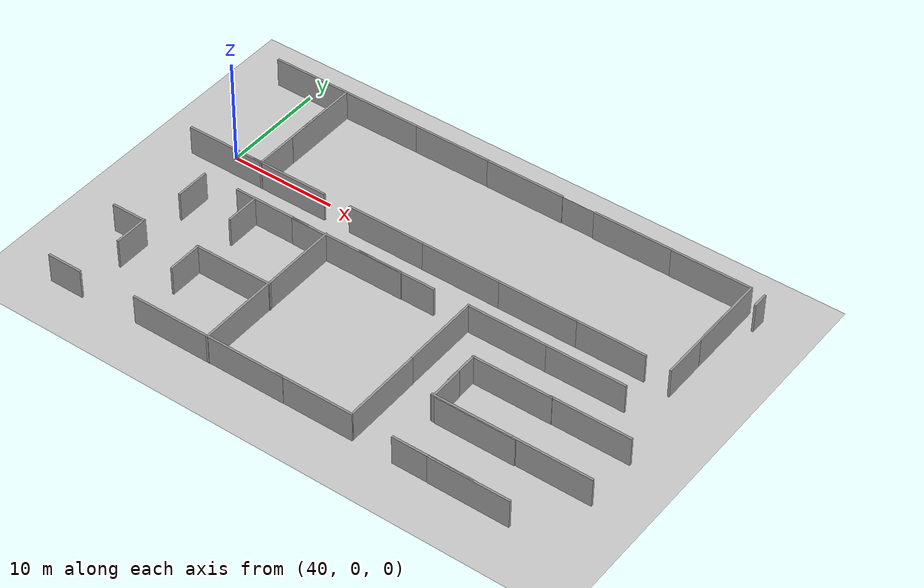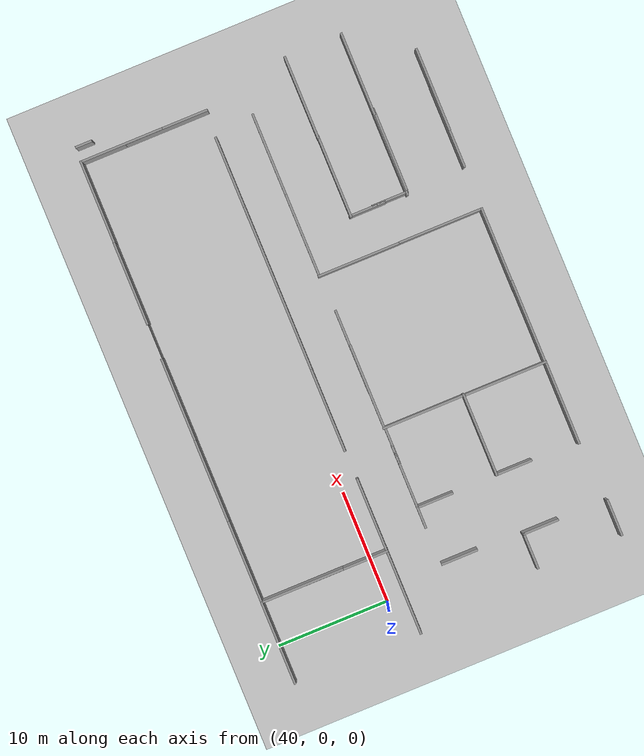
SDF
<sdf version="1.7">
 <world name="default">
  <model name="ground_plane">
   <static>1</static>
   <link name="link">
    <collision name="collision">
     <geometry><plane><normal>0 0 1</normal><size>100 100</size></plane></geometry>
     <surface>
      <contact><collide_bitmask>65535</collide_bitmask></contact>
      <friction><ode><mu>100</mu><mu2>50</mu2></ode></friction>
     </surface>
    </collision>
    <visual name="visual">
     <cast_shadows>0</cast_shadows>
     <geometry><plane><normal>0 0 1</normal><size>100 100</size></plane></geometry>
     <material>
      <script><uri>file://media/materials/scripts/gazebo.material</uri><name>Gazebo/Grey</name></script>
     </material>
    </visual>
   </link>
  </model>
  <model name="grey_wall_clone_1_clone_2_clone_clone_clone">
   <static>1</static>
   <link name="link">
    <pose>0 0 1.4 0 -0 0</pose>
    <collision name="collision"><geometry><box><size>7.5 0.2 2.8</size></box></geometry></collision>
    <visual name="visual">
     <cast_shadows>0</cast_shadows>
     <geometry><box><size>7.5 0.2 2.8</size></box></geometry>
     <material>
      <script>
       <uri>model://grey_wall/materials/scripts</uri>
       <uri>model://grey_wall/materials/textures</uri>
       <name>vrc/grey_wall</name>
      </script>
     </material>
    </visual>
   </link>
   <pose>40.4619 9.80574 0 0 -0 0</pose>
  </model>
  <model name="grey_wall_clone_2_clone_clone_clone_1_clone_clone_0_clone_0">
   <static>1</static>
   <link name="link">
    <pose>0 0 1.4 0 -0 0</pose>
    <collision name="collision"><geometry><box><size>7.5 0.2 2.8</size></box></geometry></collision>
    <visual name="visual">
     <cast_shadows>0</cast_shadows>
     <geometry><box><size>7.5 0.2 2.8</size></box></geometry>
     <material>
      <script>
       <uri>model://grey_wall/materials/scripts</uri>
       <uri>model://grey_wall/materials/textures</uri>
       <name>vrc/grey_wall</name>
      </script>
     </material>
    </visual>
   </link>
   <pose>44.1466 6.12101 0 0 0 -1.5708</pose>
  </model>
  <model name="grey_wall_clone_2_clone_clone_clone_1_clone_clone_0_clone_1">
   <static>1</static>
   <link name="link">
    <pose>0 0 1.4 0 -0 0</pose>
    <collision name="collision"><geometry><box><size>7.5 0.2 2.8</size></box></geometry></collision>
    <visual name="visual">
     <cast_shadows>0</cast_shadows>
     <geometry><box><size>7.5 0.2 2.8</size></box></geometry>
     <material>
      <script>
       <uri>model://grey_wall/materials/scripts</uri>
       <uri>model://grey_wall/materials/textures</uri>
       <name>vrc/grey_wall</name>
      </script>
     </material>
    </visual>
   </link>
   <pose>44.1365 2.03383 0 0 0 -1.5708</pose>
  </model>
  <model name="grey_wall_clone_1_clone_2_clone_clone_clone_clone">
   <static>1</static>
   <link name="link">
    <pose>0 0 1.4 0 -0 0</pose>
    <collision name="collision"><geometry><box><size>7.5 0.2 2.8</size></box></geometry></collision>
    <visual name="visual">
     <cast_shadows>0</cast_shadows>
     <geometry><box><size>7.5 0.2 2.8</size></box></geometry>
     <material>
      <script>
       <uri>model://grey_wall/materials/scripts</uri>
       <uri>model://grey_wall/materials/textures</uri>
       <name>vrc/grey_wall</name>
      </script>
     </material>
    </visual>
   </link>
   <pose>40.3269 -1.60341 0 0 -0 0</pose>
  </model>
  <model name="fixed_half_clone_15">
   <link name="link">
    <pose>0 0 1.4 0 -0 0</pose>
    <inertial>
     <mass>1</mass>
     <inertia><ixx>1</ixx><ixy>0</ixy><ixz>0</ixz><iyy>1</iyy><iyz>0</iyz><izz>1</izz></inertia>
    </inertial>
    <visual name="visual">
     <cast_shadows>0</cast_shadows>
     <geometry><box><size>3.3 0.2 2.8</size></box></geometry>
     <material>
      <script>
       <uri>model://grey_wall/materials/scripts</uri>
       <uri>model://grey_wall/materials/textures</uri>
       <name>vrc/grey_wall</name>
      </script>
      <shader type="pixel"><normal_map>__default__</normal_map></shader>
      <ambient>1 1 1 1</ambient>
      <diffuse>1 1 1 1</diffuse>
      <specular>0 0 0 1</specular>
      <emissive>0 0 0 1</emissive>
     </material>
    </visual>
    <collision name="collision">
     <geometry><box><size>3.3 0.2 2.8</size></box></geometry>
     <surface>
      <friction>
       <ode><mu>1</mu><mu2>1</mu2><fdir1>0 0 0</fdir1><slip1>0</slip1><slip2>0</slip2></ode>
       <torsional>
        <coefficient>1</coefficient>
        <patch_radius>0</patch_radius>
        <surface_radius>0</surface_radius>
        <use_patch_radius>1</use_patch_radius>
        <ode><slip>0</slip></ode>
       </torsional>
      </friction>
      <bounce><restitution_coefficient>0</restitution_coefficient><threshold>1e+06</threshold></bounce>
      <contact>
       <collide_without_contact>0</collide_without_contact>
       <collide_without_contact_bitmask>1</collide_without_contact_bitmask>
       <collide_bitmask>1</collide_bitmask>
       <ode>
        <soft_cfm>0</soft_cfm>
        <soft_erp>0.2</soft_erp>
        <kp>1e+13</kp>
        <kd>1</kd>
        <max_vel>0.01</max_vel>
        <min_depth>0</min_depth>
       </ode>
       <bullet>
        <split_impulse>1</split_impulse>
        <split_impulse_penetration_threshold>-0.01</split_impulse_penetration_threshold>
        <soft_cfm>0</soft_cfm>
        <soft_erp>0.2</soft_erp>
        <kp>1e+13</kp>
        <kd>1</kd>
       </bullet>
      </contact>
     </surface>
    </collision>
   </link>
   <static>1</static>
   <pose>41.0919 -14.3442 0 0 0 -1.5708</pose>
  </model>
  <model name="fixed_half_clone_16">
   <link name="link">
    <pose>0 0 1.4 0 -0 0</pose>
    <inertial>
     <mass>1</mass>
     <inertia><ixx>1</ixx><ixy>0</ixy><ixz>0</ixz><iyy>1</iyy><iyz>0</iyz><izz>1</izz></inertia>
    </inertial>
    <visual name="visual">
     <cast_shadows>0</cast_shadows>
     <geometry><box><size>3.3 0.2 2.8</size></box></geometry>
     <material>
      <script>
       <uri>model://grey_wall/materials/scripts</uri>
       <uri>model://grey_wall/materials/textures</uri>
       <name>vrc/grey_wall</name>
      </script>
      <shader type="pixel"><normal_map>__default__</normal_map></shader>
      <ambient>1 1 1 1</ambient>
      <diffuse>1 1 1 1</diffuse>
      <specular>0 0 0 1</specular>
      <emissive>0 0 0 1</emissive>
     </material>
    </visual>
    <collision name="collision">
     <geometry><box><size>3.3 0.2 2.8</size></box></geometry>
     <surface>
      <friction>
       <ode><mu>1</mu><mu2>1</mu2><fdir1>0 0 0</fdir1><slip1>0</slip1><slip2>0</slip2></ode>
       <torsional>
        <coefficient>1</coefficient>
        <patch_radius>0</patch_radius>
        <surface_radius>0</surface_radius>
        <use_patch_radius>1</use_patch_radius>
        <ode><slip>0</slip></ode>
       </torsional>
      </friction>
      <bounce><restitution_coefficient>0</restitution_coefficient><threshold>1e+06</threshold></bounce>
      <contact>
       <collide_without_contact>0</collide_without_contact>
       <collide_without_contact_bitmask>1</collide_without_contact_bitmask>
       <collide_bitmask>1</collide_bitmask>
       <ode>
        <soft_cfm>0</soft_cfm>
        <soft_erp>0.2</soft_erp>
        <kp>1e+13</kp>
        <kd>1</kd>
        <max_vel>0.01</max_vel>
        <min_depth>0</min_depth>
       </ode>
       <bullet>
        <split_impulse>1</split_impulse>
        <split_impulse_penetration_threshold>-0.01</split_impulse_penetration_threshold>
        <soft_cfm>0</soft_cfm>
        <soft_erp>0.2</soft_erp>
        <kp>1e+13</kp>
        <kd>1</kd>
       </bullet>
      </contact>
     </surface>
    </collision>
   </link>
   <static>1</static>
   <pose>41.3402 -7.06915 0 0 0 -1.5708</pose>
  </model>
  <model name="fixed_half_clone_17_clone_6">
   <link name="link">
    <pose>0 0 1.4 0 -0 0</pose>
    <inertial>
     <mass>1</mass>
     <inertia><ixx>1</ixx><ixy>0</ixy><ixz>0</ixz><iyy>1</iyy><iyz>0</iyz><izz>1</izz></inertia>
    </inertial>
    <visual name="visual">
     <cast_shadows>0</cast_shadows>
     <geometry><box><size>3.3 0.2 2.8</size></box></geometry>
     <material>
      <script>
       <uri>model://grey_wall/materials/scripts</uri>
       <uri>model://grey_wall/materials/textures</uri>
       <name>vrc/grey_wall</name>
      </script>
      <shader type="pixel"><normal_map>__default__</normal_map></shader>
      <ambient>1 1 1 1</ambient>
      <diffuse>1 1 1 1</diffuse>
      <specular>0 0 0 1</specular>
      <emissive>0 0 0 1</emissive>
     </material>
    </visual>
    <collision name="collision">
     <geometry><box><size>3.3 0.2 2.8</size></box></geometry>
     <surface>
      <friction>
       <ode><mu>1</mu><mu2>1</mu2><fdir1>0 0 0</fdir1><slip1>0</slip1><slip2>0</slip2></ode>
       <torsional>
        <coefficient>1</coefficient>
        <patch_radius>0</patch_radius>
        <surface_radius>0</surface_radius>
        <use_patch_radius>1</use_patch_radius>
        <ode><slip>0</slip></ode>
       </torsional>
      </friction>
      <bounce><restitution_coefficient>0</restitution_coefficient><threshold>1e+06</threshold></bounce>
      <contact>
       <collide_without_contact>0</collide_without_contact>
       <collide_without_contact_bitmask>1</collide_without_contact_bitmask>
       <collide_bitmask>1</collide_bitmask>
       <ode>
        <soft_cfm>0</soft_cfm>
        <soft_erp>0.2</soft_erp>
        <kp>1e+13</kp>
        <kd>1</kd>
        <max_vel>0.01</max_vel>
        <min_depth>0</min_depth>
       </ode>
       <bullet>
        <split_impulse>1</split_impulse>
        <split_impulse_penetration_threshold>-0.01</split_impulse_penetration_threshold>
        <soft_cfm>0</soft_cfm>
        <soft_erp>0.2</soft_erp>
        <kp>1e+13</kp>
        <kd>1</kd>
       </bullet>
      </contact>
     </surface>
    </collision>
   </link>
   <static>1</static>
   <pose>39.4378 -20.4114 0 0 -0 3.14159</pose>
  </model>
  <model name="fixed_half_clone_17_clone_8">
   <link name="link">
    <pose>0 0 1.4 0 -0 0</pose>
    <inertial>
     <mass>1</mass>
     <inertia><ixx>1</ixx><ixy>0</ixy><ixz>0</ixz><iyy>1</iyy><iyz>0</iyz><izz>1</izz></inertia>
    </inertial>
    <visual name="visual">
     <cast_shadows>0</cast_shadows>
     <geometry><box><size>3.3 0.2 2.8</size></box></geometry>
     <material>
      <script>
       <uri>model://grey_wall/materials/scripts</uri>
       <uri>model://grey_wall/materials/textures</uri>
       <name>vrc/grey_wall</name>
      </script>
      <shader type="pixel"><normal_map>__default__</normal_map></shader>
      <ambient>1 1 1 1</ambient>
      <diffuse>1 1 1 1</diffuse>
      <specular>0 0 0 1</specular>
      <emissive>0 0 0 1</emissive>
     </material>
    </visual>
    <collision name="collision">
     <geometry><box><size>3.3 0.2 2.8</size></box></geometry>
     <surface>
      <friction>
       <ode><mu>1</mu><mu2>1</mu2><fdir1>0 0 0</fdir1><slip1>0</slip1><slip2>0</slip2></ode>
       <torsional>
        <coefficient>1</coefficient>
        <patch_radius>0</patch_radius>
        <surface_radius>0</surface_radius>
        <use_patch_radius>1</use_patch_radius>
        <ode><slip>0</slip></ode>
       </torsional>
      </friction>
      <bounce><restitution_coefficient>0</restitution_coefficient><threshold>1e+06</threshold></bounce>
      <contact>
       <collide_without_contact>0</collide_without_contact>
       <collide_without_contact_bitmask>1</collide_without_contact_bitmask>
       <collide_bitmask>1</collide_bitmask>
       <ode>
        <soft_cfm>0</soft_cfm>
        <soft_erp>0.2</soft_erp>
        <kp>1e+13</kp>
        <kd>1</kd>
        <max_vel>0.01</max_vel>
        <min_depth>0</min_depth>
       </ode>
       <bullet>
        <split_impulse>1</split_impulse>
        <split_impulse_penetration_threshold>-0.01</split_impulse_penetration_threshold>
        <soft_cfm>0</soft_cfm>
        <soft_erp>0.2</soft_erp>
        <kp>1e+13</kp>
        <kd>1</kd>
       </bullet>
      </contact>
     </surface>
    </collision>
   </link>
   <static>1</static>
   <pose>39.5357 -12.8234 0 0 -0 3.14159</pose>
  </model>
  <model name="grey_wall_clone_1_clone_2_clone_clone_clone_clone_clone_clone">
   <static>1</static>
   <link name="link">
    <pose>0 0 1.4 0 -0 0</pose>
    <collision name="collision"><geometry><box><size>7.5 0.2 2.8</size></box></geometry></collision>
    <visual name="visual">
     <cast_shadows>0</cast_shadows>
     <geometry><box><size>7.5 0.2 2.8</size></box></geometry>
     <material>
      <script>
       <uri>model://grey_wall/materials/scripts</uri>
       <uri>model://grey_wall/materials/textures</uri>
       <name>vrc/grey_wall</name>
      </script>
     </material>
    </visual>
   </link>
   <pose>48.4034 -5.3811 0 0 -0 0</pose>
  </model>
  <model name="fixed_half_clone_16_clone">
   <link name="link">
    <pose>0 0 1.4 0 -0 0</pose>
    <inertial>
     <mass>1</mass>
     <inertia><ixx>1</ixx><ixy>0</ixy><ixz>0</ixz><iyy>1</iyy><iyz>0</iyz><izz>1</izz></inertia>
    </inertial>
    <visual name="visual">
     <cast_shadows>0</cast_shadows>
     <geometry><box><size>3.3 0.2 2.8</size></box></geometry>
     <material>
      <script>
       <uri>model://grey_wall/materials/scripts</uri>
       <uri>model://grey_wall/materials/textures</uri>
       <name>vrc/grey_wall</name>
      </script>
      <shader type="pixel"><normal_map>__default__</normal_map></shader>
      <ambient>1 1 1 1</ambient>
      <diffuse>1 1 1 1</diffuse>
      <specular>0 0 0 1</specular>
      <emissive>0 0 0 1</emissive>
     </material>
    </visual>
    <collision name="collision">
     <geometry><box><size>3.3 0.2 2.8</size></box></geometry>
     <surface>
      <friction>
       <ode><mu>1</mu><mu2>1</mu2><fdir1>0 0 0</fdir1><slip1>0</slip1><slip2>0</slip2></ode>
       <torsional>
        <coefficient>1</coefficient>
        <patch_radius>0</patch_radius>
        <surface_radius>0</surface_radius>
        <use_patch_radius>1</use_patch_radius>
        <ode><slip>0</slip></ode>
       </torsional>
      </friction>
      <bounce><restitution_coefficient>0</restitution_coefficient><threshold>1e+06</threshold></bounce>
      <contact>
       <collide_without_contact>0</collide_without_contact>
       <collide_without_contact_bitmask>1</collide_without_contact_bitmask>
       <collide_bitmask>1</collide_bitmask>
       <ode>
        <soft_cfm>0</soft_cfm>
        <soft_erp>0.2</soft_erp>
        <kp>1e+13</kp>
        <kd>1</kd>
        <max_vel>0.01</max_vel>
        <min_depth>0</min_depth>
       </ode>
       <bullet>
        <split_impulse>1</split_impulse>
        <split_impulse_penetration_threshold>-0.01</split_impulse_penetration_threshold>
        <soft_cfm>0</soft_cfm>
        <soft_erp>0.2</soft_erp>
        <kp>1e+13</kp>
        <kd>1</kd>
       </bullet>
      </contact>
     </surface>
    </collision>
   </link>
   <static>1</static>
   <pose>46.5548 -6.98911 0 0 0 -1.5708</pose>
  </model>
  <model name="grey_wall_clone_1_clone_2_clone_clone_clone_clone_clone_clone_clone">
   <static>1</static>
   <link name="link">
    <pose>0 0 1.4 0 -0 0</pose>
    <collision name="collision"><geometry><box><size>7.5 0.2 2.8</size></box></geometry></collision>
    <visual name="visual">
     <cast_shadows>0</cast_shadows>
     <geometry><box><size>7.5 0.2 2.8</size></box></geometry>
     <material>
      <script>
       <uri>model://grey_wall/materials/scripts</uri>
       <uri>model://grey_wall/materials/textures</uri>
       <name>vrc/grey_wall</name>
      </script>
     </material>
    </visual>
   </link>
   <pose>50.2071 -12.601 0 0 -0 0</pose>
  </model>
  <model name="fixed_half_clone_19_clone_1_clone_0">
   <link name="link">
    <pose>0 0 1.4 0 -0 0</pose>
    <inertial>
     <mass>1</mass>
     <inertia><ixx>1</ixx><ixy>0</ixy><ixz>0</ixz><iyy>1</iyy><iyz>0</iyz><izz>1</izz></inertia>
    </inertial>
    <visual name="visual">
     <cast_shadows>0</cast_shadows>
     <geometry><box><size>3.3 0.2 2.8</size></box></geometry>
     <material>
      <script>
       <uri>model://grey_wall/materials/scripts</uri>
       <uri>model://grey_wall/materials/textures</uri>
       <name>vrc/grey_wall</name>
      </script>
      <shader type="pixel"><normal_map>__default__</normal_map></shader>
      <ambient>1 1 1 1</ambient>
      <diffuse>1 1 1 1</diffuse>
      <specular>0 0 0 1</specular>
      <emissive>0 0 0 1</emissive>
     </material>
    </visual>
    <collision name="collision">
     <geometry><box><size>3.3 0.2 2.8</size></box></geometry>
     <surface>
      <friction>
       <ode><mu>1</mu><mu2>1</mu2><fdir1>0 0 0</fdir1><slip1>0</slip1><slip2>0</slip2></ode>
       <torsional>
        <coefficient>1</coefficient>
        <patch_radius>0</patch_radius>
        <surface_radius>0</surface_radius>
        <use_patch_radius>1</use_patch_radius>
        <ode><slip>0</slip></ode>
       </torsional>
      </friction>
      <bounce><restitution_coefficient>0</restitution_coefficient><threshold>1e+06</threshold></bounce>
      <contact>
       <collide_without_contact>0</collide_without_contact>
       <collide_without_contact_bitmask>1</collide_without_contact_bitmask>
       <collide_bitmask>1</collide_bitmask>
       <ode>
        <soft_cfm>0</soft_cfm>
        <soft_erp>0.2</soft_erp>
        <kp>1e+13</kp>
        <kd>1</kd>
        <max_vel>0.01</max_vel>
        <min_depth>0</min_depth>
       </ode>
       <bullet>
        <split_impulse>1</split_impulse>
        <split_impulse_penetration_threshold>-0.01</split_impulse_penetration_threshold>
        <soft_cfm>0</soft_cfm>
        <soft_erp>0.2</soft_erp>
        <kp>1e+13</kp>
        <kd>1</kd>
       </bullet>
      </contact>
     </surface>
    </collision>
   </link>
   <static>1</static>
   <pose>52.0981 -5.41667 0 0 -0 3.14159</pose>
  </model>
  <model name="grey_wall_clone_2_clone_clone_clone_1_clone_clone_0_clone_1_clone">
   <static>1</static>
   <link name="link">
    <pose>0 0 1.4 0 -0 0</pose>
    <collision name="collision"><geometry><box><size>7.5 0.2 2.8</size></box></geometry></collision>
    <visual name="visual">
     <cast_shadows>0</cast_shadows>
     <geometry><box><size>7.5 0.2 2.8</size></box></geometry>
     <material>
      <script>
       <uri>model://grey_wall/materials/scripts</uri>
       <uri>model://grey_wall/materials/textures</uri>
       <name>vrc/grey_wall</name>
      </script>
     </material>
    </visual>
   </link>
   <pose>53.8123 -8.96503 0 0 0 -1.5708</pose>
  </model>
  <model name="fixed_half_clone_16_clone_clone">
   <link name="link">
    <pose>0 0 1.4 0 -0 0</pose>
    <inertial>
     <mass>1</mass>
     <inertia><ixx>1</ixx><ixy>0</ixy><ixz>0</ixz><iyy>1</iyy><iyz>0</iyz><izz>1</izz></inertia>
    </inertial>
    <visual name="visual">
     <cast_shadows>0</cast_shadows>
     <geometry><box><size>3.3 0.2 2.8</size></box></geometry>
     <material>
      <script>
       <uri>model://grey_wall/materials/scripts</uri>
       <uri>model://grey_wall/materials/textures</uri>
       <name>vrc/grey_wall</name>
      </script>
      <shader type="pixel"><normal_map>__default__</normal_map></shader>
      <ambient>1 1 1 1</ambient>
      <diffuse>1 1 1 1</diffuse>
      <specular>0 0 0 1</specular>
      <emissive>0 0 0 1</emissive>
     </material>
    </visual>
    <collision name="collision">
     <geometry><box><size>3.3 0.2 2.8</size></box></geometry>
     <surface>
      <friction>
       <ode><mu>1</mu><mu2>1</mu2><fdir1>0 0 0</fdir1><slip1>0</slip1><slip2>0</slip2></ode>
       <torsional>
        <coefficient>1</coefficient>
        <patch_radius>0</patch_radius>
        <surface_radius>0</surface_radius>
        <use_patch_radius>1</use_patch_radius>
        <ode><slip>0</slip></ode>
       </torsional>
      </friction>
      <bounce><restitution_coefficient>0</restitution_coefficient><threshold>1e+06</threshold></bounce>
      <contact>
       <collide_without_contact>0</collide_without_contact>
       <collide_without_contact_bitmask>1</collide_without_contact_bitmask>
       <collide_bitmask>1</collide_bitmask>
       <ode>
        <soft_cfm>0</soft_cfm>
        <soft_erp>0.2</soft_erp>
        <kp>1e+13</kp>
        <kd>1</kd>
        <max_vel>0.01</max_vel>
        <min_depth>0</min_depth>
       </ode>
       <bullet>
        <split_impulse>1</split_impulse>
        <split_impulse_penetration_threshold>-0.01</split_impulse_penetration_threshold>
        <soft_cfm>0</soft_cfm>
        <soft_erp>0.2</soft_erp>
        <kp>1e+13</kp>
        <kd>1</kd>
       </bullet>
      </contact>
     </surface>
    </collision>
   </link>
   <static>1</static>
   <pose>46.573 -14.1903 0 0 0 -1.5708</pose>
  </model>
  <model name="grey_wall_clone_2_clone_clone_clone_1_clone_clone_0_clone_1_clone_clone">
   <static>1</static>
   <link name="link">
    <pose>0 0 1.4 0 -0 0</pose>
    <collision name="collision"><geometry><box><size>7.5 0.2 2.8</size></box></geometry></collision>
    <visual name="visual">
     <cast_shadows>0</cast_shadows>
     <geometry><box><size>7.5 0.2 2.8</size></box></geometry>
     <material>
      <script>
       <uri>model://grey_wall/materials/scripts</uri>
       <uri>model://grey_wall/materials/textures</uri>
       <name>vrc/grey_wall</name>
      </script>
     </material>
    </visual>
   </link>
   <pose>53.7839 -16.3918 0 0 0 -1.5708</pose>
  </model>
  <model name="grey_wall_clone_1_clone_2_clone_clone_clone_clone_clone_clone_clone_clone">
   <static>1</static>
   <link name="link">
    <pose>0 0 1.4 0 -0 0</pose>
    <collision name="collision"><geometry><box><size>7.5 0.2 2.8</size></box></geometry></collision>
    <visual name="visual">
     <cast_shadows>0</cast_shadows>
     <geometry><box><size>7.5 0.2 2.8</size></box></geometry>
     <material>
      <script>
       <uri>model://grey_wall/materials/scripts</uri>
       <uri>model://grey_wall/materials/textures</uri>
       <name>vrc/grey_wall</name>
      </script>
     </material>
    </visual>
   </link>
   <pose>50.0643 -20.0376 0 0 -0 0</pose>
  </model>
  <model name="grey_wall_clone_1_clone_2_clone_clone_clone_clone_clone_clone_clone_clone_clone_0">
   <static>1</static>
   <link name="link">
    <pose>0 0 1.4 0 -0 0</pose>
    <collision name="collision"><geometry><box><size>7.5 0.2 2.8</size></box></geometry></collision>
    <visual name="visual">
     <cast_shadows>0</cast_shadows>
     <geometry><box><size>7.5 0.2 2.8</size></box></geometry>
     <material>
      <script>
       <uri>model://grey_wall/materials/scripts</uri>
       <uri>model://grey_wall/materials/textures</uri>
       <name>vrc/grey_wall</name>
      </script>
     </material>
    </visual>
   </link>
   <pose>57.4851 -20.0047 0 0 -0 0</pose>
  </model>
  <model name="grey_wall_clone_1_clone_2_clone_clone_clone_clone_clone_clone_clone_clone_clone_1">
   <static>1</static>
   <link name="link">
    <pose>0 0 1.4 0 -0 0</pose>
    <collision name="collision"><geometry><box><size>7.5 0.2 2.8</size></box></geometry></collision>
    <visual name="visual">
     <cast_shadows>0</cast_shadows>
     <geometry><box><size>7.5 0.2 2.8</size></box></geometry>
     <material>
      <script>
       <uri>model://grey_wall/materials/scripts</uri>
       <uri>model://grey_wall/materials/textures</uri>
       <name>vrc/grey_wall</name>
      </script>
     </material>
    </visual>
   </link>
   <pose>64.1098 -19.9818 0 0 -0 0</pose>
  </model>
  <model name="grey_wall_clone_2_clone_clone_clone_1_clone_clone_0_clone_1_clone_clone_clone_0">
   <static>1</static>
   <link name="link">
    <pose>0 0 1.4 0 -0 0</pose>
    <collision name="collision"><geometry><box><size>7.5 0.2 2.8</size></box></geometry></collision>
    <visual name="visual">
     <cast_shadows>0</cast_shadows>
     <geometry><box><size>7.5 0.2 2.8</size></box></geometry>
     <material>
      <script>
       <uri>model://grey_wall/materials/scripts</uri>
       <uri>model://grey_wall/materials/textures</uri>
       <name>vrc/grey_wall</name>
      </script>
     </material>
    </visual>
   </link>
   <pose>67.773 -16.2075 0 0 0 -1.5708</pose>
  </model>
  <model name="grey_wall_clone_2_clone_clone_clone_1_clone_clone_0_clone_1_clone_clone_clone_1">
   <static>1</static>
   <link name="link">
    <pose>0 0 1.4 0 -0 0</pose>
    <collision name="collision"><geometry><box><size>7.5 0.2 2.8</size></box></geometry></collision>
    <visual name="visual">
     <cast_shadows>0</cast_shadows>
     <geometry><box><size>7.5 0.2 2.8</size></box></geometry>
     <material>
      <script>
       <uri>model://grey_wall/materials/scripts</uri>
       <uri>model://grey_wall/materials/textures</uri>
       <name>vrc/grey_wall</name>
      </script>
     </material>
    </visual>
   </link>
   <pose>67.7529 -8.79604 0 0 0 -1.5708</pose>
  </model>
  <model name="grey_wall_clone_1_clone_2_clone_clone_clone_clone_clone_clone_clone_clone_clone_2">
   <static>1</static>
   <link name="link">
    <pose>0 0 1.4 0 -0 0</pose>
    <collision name="collision"><geometry><box><size>7.5 0.2 2.8</size></box></geometry></collision>
    <visual name="visual">
     <cast_shadows>0</cast_shadows>
     <geometry><box><size>7.5 0.2 2.8</size></box></geometry>
     <material>
      <script>
       <uri>model://grey_wall/materials/scripts</uri>
       <uri>model://grey_wall/materials/textures</uri>
       <name>vrc/grey_wall</name>
      </script>
     </material>
    </visual>
   </link>
   <pose>57.6561 -5.35235 0 0 -0 0</pose>
  </model>
  <model name="grey_wall_clone_1_clone_2_clone_clone_clone_clone_clone_clone_clone_clone_clone_3">
   <static>1</static>
   <link name="link">
    <pose>0 0 1.4 0 -0 0</pose>
    <collision name="collision"><geometry><box><size>7.5 0.2 2.8</size></box></geometry></collision>
    <visual name="visual">
     <cast_shadows>0</cast_shadows>
     <geometry><box><size>7.5 0.2 2.8</size></box></geometry>
     <material>
      <script>
       <uri>model://grey_wall/materials/scripts</uri>
       <uri>model://grey_wall/materials/textures</uri>
       <name>vrc/grey_wall</name>
      </script>
     </material>
    </visual>
   </link>
   <pose>60.8308 -5.32224 0 0 -0 0</pose>
  </model>
  <model name="grey_wall_clone_1_clone_2_clone_clone_clone_clone_clone_clone_clone_0">
   <static>1</static>
   <link name="link">
    <pose>0 0 1.4 0 -0 0</pose>
    <collision name="collision"><geometry><box><size>7.5 0.2 2.8</size></box></geometry></collision>
    <visual name="visual">
     <cast_shadows>0</cast_shadows>
     <geometry><box><size>7.5 0.2 2.8</size></box></geometry>
     <material>
      <script>
       <uri>model://grey_wall/materials/scripts</uri>
       <uri>model://grey_wall/materials/textures</uri>
       <name>vrc/grey_wall</name>
      </script>
     </material>
    </visual>
   </link>
   <pose>47 -1.59772 0 0 -0 0</pose>
  </model>
  <model name="grey_wall_clone_1_clone_2_clone_clone_clone_clone_clone_clone_clone_1">
   <static>1</static>
   <link name="link">
    <pose>0 0 1.4 0 -0 0</pose>
    <collision name="collision"><geometry><box><size>7.5 0.2 2.8</size></box></geometry></collision>
    <visual name="visual">
     <cast_shadows>0</cast_shadows>
     <geometry><box><size>7.5 0.2 2.8</size></box></geometry>
     <material>
      <script>
       <uri>model://grey_wall/materials/scripts</uri>
       <uri>model://grey_wall/materials/textures</uri>
       <name>vrc/grey_wall</name>
      </script>
     </material>
    </visual>
   </link>
   <pose>47.8096 9.79453 0 0 -0 0</pose>
  </model>
  <model name="grey_wall_clone_1_clone_2_clone_clone_clone_clone_clone_clone_clone_2">
   <static>1</static>
   <link name="link">
    <pose>0 0 1.4 0 -0 0</pose>
    <collision name="collision"><geometry><box><size>7.5 0.2 2.8</size></box></geometry></collision>
    <visual name="visual">
     <cast_shadows>0</cast_shadows>
     <geometry><box><size>7.5 0.2 2.8</size></box></geometry>
     <material>
      <script>
       <uri>model://grey_wall/materials/scripts</uri>
       <uri>model://grey_wall/materials/textures</uri>
       <name>vrc/grey_wall</name>
      </script>
     </material>
    </visual>
   </link>
   <pose>55.2066 9.79465 0 0 -0 0</pose>
  </model>
  <model name="grey_wall_clone_1_clone_2_clone_clone_clone_clone_clone_clone_clone_3">
   <static>1</static>
   <link name="link">
    <pose>0 0 1.4 0 -0 0</pose>
    <collision name="collision"><geometry><box><size>7.5 0.2 2.8</size></box></geometry></collision>
    <visual name="visual">
     <cast_shadows>0</cast_shadows>
     <geometry><box><size>7.5 0.2 2.8</size></box></geometry>
     <material>
      <script>
       <uri>model://grey_wall/materials/scripts</uri>
       <uri>model://grey_wall/materials/textures</uri>
       <name>vrc/grey_wall</name>
      </script>
     </material>
    </visual>
   </link>
   <pose>62.615 9.7806 0 0 -0 0</pose>
  </model>
  <model name="half_slim_grey_wall_clone_2">
   <link name="link">
    <pose>0 0 1.4 0 -0 0</pose>
    <inertial>
     <mass>1</mass>
     <inertia><ixx>1</ixx><ixy>0</ixy><ixz>0</ixz><iyy>1</iyy><iyz>0</iyz><izz>1</izz></inertia>
    </inertial>
    <visual name="visual">
     <cast_shadows>0</cast_shadows>
     <geometry><box><size>3.3 0.0001 2.8</size></box></geometry>
     <material>
      <script>
       <uri>model://grey_wall/materials/scripts</uri>
       <uri>model://grey_wall/materials/textures</uri>
       <name>vrc/grey_wall</name>
      </script>
      <shader type="pixel"><normal_map>__default__</normal_map></shader>
      <ambient>1 1 1 1</ambient>
      <diffuse>1 1 1 1</diffuse>
      <specular>0 0 0 1</specular>
      <emissive>0 0 0 1</emissive>
     </material>
    </visual>
    <collision name="collision">
     <geometry><box><size>3.3 0.2 2.8</size></box></geometry>
     <surface>
      <friction>
       <ode><mu>1</mu><mu2>1</mu2><fdir1>0 0 0</fdir1><slip1>0</slip1><slip2>0</slip2></ode>
       <torsional>
        <coefficient>1</coefficient>
        <patch_radius>0</patch_radius>
        <surface_radius>0</surface_radius>
        <use_patch_radius>1</use_patch_radius>
        <ode><slip>0</slip></ode>
       </torsional>
      </friction>
      <bounce><restitution_coefficient>0</restitution_coefficient><threshold>1e+06</threshold></bounce>
      <contact>
       <collide_without_contact>0</collide_without_contact>
       <collide_without_contact_bitmask>1</collide_without_contact_bitmask>
       <collide_bitmask>1</collide_bitmask>
       <ode>
        <soft_cfm>0</soft_cfm>
        <soft_erp>0.2</soft_erp>
        <kp>1e+13</kp>
        <kd>1</kd>
        <max_vel>0.01</max_vel>
        <min_depth>0</min_depth>
       </ode>
       <bullet>
        <split_impulse>1</split_impulse>
        <split_impulse_penetration_threshold>-0.01</split_impulse_penetration_threshold>
        <soft_cfm>0</soft_cfm>
        <soft_erp>0.2</soft_erp>
        <kp>1e+13</kp>
        <kd>1</kd>
       </bullet>
      </contact>
     </surface>
    </collision>
   </link>
   <static>1</static>
   <pose>67.8911 9.72279 0 0 -0 0</pose>
  </model>
  <model name="grey_wall_clone_1_clone_2_clone_clone_clone_clone_clone_clone_clone_3_clone">
   <static>1</static>
   <link name="link">
    <pose>0 0 1.4 0 -0 0</pose>
    <collision name="collision"><geometry><box><size>7.5 0.2 2.8</size></box></geometry></collision>
    <visual name="visual">
     <cast_shadows>0</cast_shadows>
     <geometry><box><size>7.5 0.2 2.8</size></box></geometry>
     <material>
      <script>
       <uri>model://grey_wall/materials/scripts</uri>
       <uri>model://grey_wall/materials/textures</uri>
       <name>vrc/grey_wall</name>
      </script>
     </material>
    </visual>
   </link>
   <pose>73.2009 9.74741 0 0 -0 0</pose>
  </model>
  <model name="grey_wall_clone_1_clone_2_clone_clone_clone_clone_clone_clone_clone_3_clone_0">
   <static>1</static>
   <link name="link">
    <pose>0 0 1.4 0 -0 0</pose>
    <collision name="collision"><geometry><box><size>7.5 0.2 2.8</size></box></geometry></collision>
    <visual name="visual">
     <cast_shadows>0</cast_shadows>
     <geometry><box><size>7.5 0.2 2.8</size></box></geometry>
     <material>
      <script>
       <uri>model://grey_wall/materials/scripts</uri>
       <uri>model://grey_wall/materials/textures</uri>
       <name>vrc/grey_wall</name>
      </script>
     </material>
    </visual>
   </link>
   <pose>80.6136 9.72622 0 0 -0 0</pose>
  </model>
  <model name="grey_wall_clone_1_clone_2_clone_clone_clone_clone_clone_clone_clone_clone_clone_3_clone">
   <static>1</static>
   <link name="link">
    <pose>0 0 1.4 0 -0 0</pose>
    <collision name="collision"><geometry><box><size>7.5 0.2 2.8</size></box></geometry></collision>
    <visual name="visual">
     <cast_shadows>0</cast_shadows>
     <geometry><box><size>7.5 0.2 2.8</size></box></geometry>
     <material>
      <script>
       <uri>model://grey_wall/materials/scripts</uri>
       <uri>model://grey_wall/materials/textures</uri>
       <name>vrc/grey_wall</name>
      </script>
     </material>
    </visual>
   </link>
   <pose>71.4306 -5.1769 0 0 -0 0</pose>
  </model>
  <model name="grey_wall_clone_1_clone_2_clone_clone_clone_clone_clone_clone_clone_clone_clone_3_clone_0">
   <static>1</static>
   <link name="link">
    <pose>0 0 1.4 0 -0 0</pose>
    <collision name="collision"><geometry><box><size>7.5 0.2 2.8</size></box></geometry></collision>
    <visual name="visual">
     <cast_shadows>0</cast_shadows>
     <geometry><box><size>7.5 0.2 2.8</size></box></geometry>
     <material>
      <script>
       <uri>model://grey_wall/materials/scripts</uri>
       <uri>model://grey_wall/materials/textures</uri>
       <name>vrc/grey_wall</name>
      </script>
     </material>
    </visual>
   </link>
   <pose>78.7832 -5.17486 0 0 -0 0</pose>
  </model>
  <model name="grey_wall_clone_1_clone_2_clone_clone_clone_clone_clone_clone_clone_clone_clone_3_clone_0_clone_0">
   <static>1</static>
   <link name="link">
    <pose>0 0 1.4 0 -0 0</pose>
    <collision name="collision"><geometry><box><size>7.5 0.2 2.8</size></box></geometry></collision>
    <visual name="visual">
     <cast_shadows>0</cast_shadows>
     <geometry><box><size>7.5 0.2 2.8</size></box></geometry>
     <material>
      <script>
       <uri>model://grey_wall/materials/scripts</uri>
       <uri>model://grey_wall/materials/textures</uri>
       <name>vrc/grey_wall</name>
      </script>
     </material>
    </visual>
   </link>
   <pose>78.6151 -20.0233 0 0 -0 0</pose>
  </model>
  <model name="grey_wall_clone_1_clone_2_clone_clone_clone_clone_clone_clone_clone_clone_clone_3_clone_0_clone_1">
   <static>1</static>
   <link name="link">
    <pose>0 0 1.4 0 -0 0</pose>
    <collision name="collision"><geometry><box><size>7.5 0.2 2.8</size></box></geometry></collision>
    <visual name="visual">
     <cast_shadows>0</cast_shadows>
     <geometry><box><size>7.5 0.2 2.8</size></box></geometry>
     <material>
      <script>
       <uri>model://grey_wall/materials/scripts</uri>
       <uri>model://grey_wall/materials/textures</uri>
       <name>vrc/grey_wall</name>
      </script>
     </material>
    </visual>
   </link>
   <pose>75.313 -19.9975 0 0 -0 0</pose>
  </model>
  <model name="grey_wall_clone_1_clone_2_clone_clone_clone_clone_clone_clone_clone_clone_clone_3_clone_0_clone_2">
   <static>1</static>
   <link name="link">
    <pose>0 0 1.4 0 -0 0</pose>
    <collision name="collision"><geometry><box><size>7.5 0.2 2.8</size></box></geometry></collision>
    <visual name="visual">
     <cast_shadows>0</cast_shadows>
     <geometry><box><size>7.5 0.2 2.8</size></box></geometry>
     <material>
      <script>
       <uri>model://grey_wall/materials/scripts</uri>
       <uri>model://grey_wall/materials/textures</uri>
       <name>vrc/grey_wall</name>
      </script>
     </material>
    </visual>
   </link>
   <pose>82.2148 -9.52257 0 0 -0 0</pose>
  </model>
  <model name="grey_wall_clone_1_clone_2_clone_clone_clone_clone_clone_clone_clone_clone_clone_3_clone_0_clone_2_clone">
   <static>1</static>
   <link name="link">
    <pose>0 0 1.4 0 -0 0</pose>
    <collision name="collision"><geometry><box><size>7.5 0.2 2.8</size></box></geometry></collision>
    <visual name="visual">
     <cast_shadows>0</cast_shadows>
     <geometry><box><size>7.5 0.2 2.8</size></box></geometry>
     <material>
      <script>
       <uri>model://grey_wall/materials/scripts</uri>
       <uri>model://grey_wall/materials/textures</uri>
       <name>vrc/grey_wall</name>
      </script>
     </material>
    </visual>
   </link>
   <pose>82.2419 -14.6659 0 0 -0 0</pose>
  </model>
  <model name="grey_wall_clone_1_clone_2_clone_clone_clone_clone_clone_clone_clone_clone_clone_3_clone_0_clone_2_clone_0">
   <static>1</static>
   <link name="link">
    <pose>0 0 1.4 0 -0 0</pose>
    <collision name="collision"><geometry><box><size>7.5 0.2 2.8</size></box></geometry></collision>
    <visual name="visual">
     <cast_shadows>0</cast_shadows>
     <geometry><box><size>7.5 0.2 2.8</size></box></geometry>
     <material>
      <script>
       <uri>model://grey_wall/materials/scripts</uri>
       <uri>model://grey_wall/materials/textures</uri>
       <name>vrc/grey_wall</name>
      </script>
     </material>
    </visual>
   </link>
   <pose>75.3574 -14.7463 0 0 -0 0</pose>
  </model>
  <model name="grey_wall_clone_1_clone_2_clone_clone_clone_clone_clone_clone_clone_clone_clone_3_clone_0_clone_2_clone_1">
   <static>1</static>
   <link name="link">
    <pose>0 0 1.4 0 -0 0</pose>
    <collision name="collision"><geometry><box><size>7.5 0.2 2.8</size></box></geometry></collision>
    <visual name="visual">
     <cast_shadows>0</cast_shadows>
     <geometry><box><size>7.5 0.2 2.8</size></box></geometry>
     <material>
      <script>
       <uri>model://grey_wall/materials/scripts</uri>
       <uri>model://grey_wall/materials/textures</uri>
       <name>vrc/grey_wall</name>
      </script>
     </material>
    </visual>
   </link>
   <pose>75.0505 -9.55587 0 0 -0 0</pose>
  </model>
  <model name="fixed_half_clone_16_clone_clone_clone_0_clone_4_clone">
   <link name="link">
    <pose>0 0 1.4 0 -0 0</pose>
    <inertial>
     <mass>1</mass>
     <inertia><ixx>1</ixx><ixy>0</ixy><ixz>0</ixz><iyy>1</iyy><iyz>0</iyz><izz>1</izz></inertia>
    </inertial>
    <visual name="visual">
     <cast_shadows>0</cast_shadows>
     <geometry><box><size>3.3 0.2 2.8</size></box></geometry>
     <material>
      <script>
       <uri>model://grey_wall/materials/scripts</uri>
       <uri>model://grey_wall/materials/textures</uri>
       <name>vrc/grey_wall</name>
      </script>
      <shader type="pixel"><normal_map>__default__</normal_map></shader>
      <ambient>1 1 1 1</ambient>
      <diffuse>1 1 1 1</diffuse>
      <specular>0 0 0 1</specular>
      <emissive>0 0 0 1</emissive>
     </material>
    </visual>
    <collision name="collision">
     <geometry><box><size>3.3 0.2 2.8</size></box></geometry>
     <surface>
      <friction>
       <ode><mu>1</mu><mu2>1</mu2><fdir1>0 0 0</fdir1><slip1>0</slip1><slip2>0</slip2></ode>
       <torsional>
        <coefficient>1</coefficient>
        <patch_radius>0</patch_radius>
        <surface_radius>0</surface_radius>
        <use_patch_radius>1</use_patch_radius>
        <ode><slip>0</slip></ode>
       </torsional>
      </friction>
      <bounce><restitution_coefficient>0</restitution_coefficient><threshold>1e+06</threshold></bounce>
      <contact>
       <collide_without_contact>0</collide_without_contact>
       <collide_without_contact_bitmask>1</collide_without_contact_bitmask>
       <collide_bitmask>1</collide_bitmask>
       <ode>
        <soft_cfm>0</soft_cfm>
        <soft_erp>0.2</soft_erp>
        <kp>1e+13</kp>
        <kd>1</kd>
        <max_vel>0.01</max_vel>
        <min_depth>0</min_depth>
       </ode>
       <bullet>
        <split_impulse>1</split_impulse>
        <split_impulse_penetration_threshold>-0.01</split_impulse_penetration_threshold>
        <soft_cfm>0</soft_cfm>
        <soft_erp>0.2</soft_erp>
        <kp>1e+13</kp>
        <kd>1</kd>
       </bullet>
      </contact>
     </surface>
    </collision>
   </link>
   <static>1</static>
   <pose>71.4232 -11.07 0 0 0 -1.5708</pose>
  </model>
  <model name="fixed_half_clone_16_clone_clone_clone_0_clone_4_clone_0">
   <link name="link">
    <pose>0 0 1.4 0 -0 0</pose>
    <inertial>
     <mass>1</mass>
     <inertia><ixx>1</ixx><ixy>0</ixy><ixz>0</ixz><iyy>1</iyy><iyz>0</iyz><izz>1</izz></inertia>
    </inertial>
    <visual name="visual">
     <cast_shadows>0</cast_shadows>
     <geometry><box><size>3.3 0.2 2.8</size></box></geometry>
     <material>
      <script>
       <uri>model://grey_wall/materials/scripts</uri>
       <uri>model://grey_wall/materials/textures</uri>
       <name>vrc/grey_wall</name>
      </script>
      <shader type="pixel"><normal_map>__default__</normal_map></shader>
      <ambient>1 1 1 1</ambient>
      <diffuse>1 1 1 1</diffuse>
      <specular>0 0 0 1</specular>
      <emissive>0 0 0 1</emissive>
     </material>
    </visual>
    <collision name="collision">
     <geometry><box><size>3.3 0.2 2.8</size></box></geometry>
     <surface>
      <friction>
       <ode><mu>1</mu><mu2>1</mu2><fdir1>0 0 0</fdir1><slip1>0</slip1><slip2>0</slip2></ode>
       <torsional>
        <coefficient>1</coefficient>
        <patch_radius>0</patch_radius>
        <surface_radius>0</surface_radius>
        <use_patch_radius>1</use_patch_radius>
        <ode><slip>0</slip></ode>
       </torsional>
      </friction>
      <bounce><restitution_coefficient>0</restitution_coefficient><threshold>1e+06</threshold></bounce>
      <contact>
       <collide_without_contact>0</collide_without_contact>
       <collide_without_contact_bitmask>1</collide_without_contact_bitmask>
       <collide_bitmask>1</collide_bitmask>
       <ode>
        <soft_cfm>0</soft_cfm>
        <soft_erp>0.2</soft_erp>
        <kp>1e+13</kp>
        <kd>1</kd>
        <max_vel>0.01</max_vel>
        <min_depth>0</min_depth>
       </ode>
       <bullet>
        <split_impulse>1</split_impulse>
        <split_impulse_penetration_threshold>-0.01</split_impulse_penetration_threshold>
        <soft_cfm>0</soft_cfm>
        <soft_erp>0.2</soft_erp>
        <kp>1e+13</kp>
        <kd>1</kd>
       </bullet>
      </contact>
     </surface>
    </collision>
   </link>
   <static>1</static>
   <pose>71.4834 -13.1721 0 0 0 -1.5708</pose>
  </model>
  <model name="grey_wall_clone_1_clone_2_clone_clone_clone_clone_clone_clone_clone_clone_clone_3_clone_0_clone_2_clone_0_clone">
   <static>1</static>
   <link name="link">
    <pose>0 0 1.4 0 -0 0</pose>
    <collision name="collision"><geometry><box><size>7.5 0.2 2.8</size></box></geometry></collision>
    <visual name="visual">
     <cast_shadows>0</cast_shadows>
     <geometry><box><size>7.5 0.2 2.8</size></box></geometry>
     <material>
      <script>
       <uri>model://grey_wall/materials/scripts</uri>
       <uri>model://grey_wall/materials/textures</uri>
       <name>vrc/grey_wall</name>
      </script>
     </material>
    </visual>
   </link>
   <pose>74.9629 -14.6575 0 0 -0 0</pose>
  </model>
  <model name="grey_wall_clone_1_clone_2_clone_clone_clone_clone_clone_clone_clone_2_clone">
   <static>1</static>
   <link name="link">
    <pose>0 0 1.4 0 -0 0</pose>
    <collision name="collision"><geometry><box><size>7.5 0.2 2.8</size></box></geometry></collision>
    <visual name="visual">
     <cast_shadows>0</cast_shadows>
     <geometry><box><size>7.5 0.2 2.8</size></box></geometry>
     <material>
      <script>
       <uri>model://grey_wall/materials/scripts</uri>
       <uri>model://grey_wall/materials/textures</uri>
       <name>vrc/grey_wall</name>
      </script>
     </material>
    </visual>
   </link>
   <pose>56.9772 -1.54308 0 0 -0 0</pose>
  </model>
  <model name="grey_wall_clone_1_clone_2_clone_clone_clone_clone_clone_clone_clone_2_clone_0">
   <static>1</static>
   <link name="link">
    <pose>0 0 1.4 0 -0 0</pose>
    <collision name="collision"><geometry><box><size>7.5 0.2 2.8</size></box></geometry></collision>
    <visual name="visual">
     <cast_shadows>0</cast_shadows>
     <geometry><box><size>7.5 0.2 2.8</size></box></geometry>
     <material>
      <script>
       <uri>model://grey_wall/materials/scripts</uri>
       <uri>model://grey_wall/materials/textures</uri>
       <name>vrc/grey_wall</name>
      </script>
     </material>
    </visual>
   </link>
   <pose>64.3905 -1.55044 0 0 -0 0</pose>
  </model>
  <model name="grey_wall_clone_1_clone_2_clone_clone_clone_clone_clone_clone_clone_2_clone_1">
   <static>1</static>
   <link name="link">
    <pose>0 0 1.4 0 -0 0</pose>
    <collision name="collision"><geometry><box><size>7.5 0.2 2.8</size></box></geometry></collision>
    <visual name="visual">
     <cast_shadows>0</cast_shadows>
     <geometry><box><size>7.5 0.2 2.8</size></box></geometry>
     <material>
      <script>
       <uri>model://grey_wall/materials/scripts</uri>
       <uri>model://grey_wall/materials/textures</uri>
       <name>vrc/grey_wall</name>
      </script>
     </material>
    </visual>
   </link>
   <pose>71.7806 -1.54976 0 0 -0 0</pose>
  </model>
  <model name="grey_wall_clone_1_clone_2_clone_clone_clone_clone_clone_clone_clone_2_clone_2">
   <static>1</static>
   <link name="link">
    <pose>0 0 1.4 0 -0 0</pose>
    <collision name="collision"><geometry><box><size>7.5 0.2 2.8</size></box></geometry></collision>
    <visual name="visual">
     <cast_shadows>0</cast_shadows>
     <geometry><box><size>7.5 0.2 2.8</size></box></geometry>
     <material>
      <script>
       <uri>model://grey_wall/materials/scripts</uri>
       <uri>model://grey_wall/materials/textures</uri>
       <name>vrc/grey_wall</name>
      </script>
     </material>
    </visual>
   </link>
   <pose>78.162 -1.54179 0 0 -0 0</pose>
  </model>
  <model name="grey_wall_clone_2_clone_clone_clone_1_clone_clone_0_clone_1_clone_clone_clone_1_clone_0_clone">
   <static>1</static>
   <link name="link">
    <pose>0 0 1.4 0 -0 0</pose>
    <collision name="collision"><geometry><box><size>7.5 0.2 2.8</size></box></geometry></collision>
    <visual name="visual">
     <cast_shadows>0</cast_shadows>
     <geometry><box><size>7.5 0.2 2.8</size></box></geometry>
     <material>
      <script>
       <uri>model://grey_wall/materials/scripts</uri>
       <uri>model://grey_wall/materials/textures</uri>
       <name>vrc/grey_wall</name>
      </script>
     </material>
    </visual>
   </link>
   <pose>84.2794 6.06876 0 0 0 -1.5708</pose>
  </model>
  <model name="grey_wall_clone_2_clone_clone_clone_1_clone_clone_0_clone_1_clone_clone_clone_1_clone_0_clone_0">
   <static>1</static>
   <link name="link">
    <pose>0 0 1.4 0 -0 0</pose>
    <collision name="collision"><geometry><box><size>7.5 0.2 2.8</size></box></geometry></collision>
    <visual name="visual">
     <cast_shadows>0</cast_shadows>
     <geometry><box><size>7.5 0.2 2.8</size></box></geometry>
     <material>
      <script>
       <uri>model://grey_wall/materials/scripts</uri>
       <uri>model://grey_wall/materials/textures</uri>
       <name>vrc/grey_wall</name>
      </script>
     </material>
    </visual>
   </link>
   <pose>84.2721 1.9402 0 0 0 -1.5708</pose>
  </model>
  <model name="half_wall_clone_0_clone_clone_clone_9_clone_8">
   <link name="link">
    <pose>0 0 1.4 0 -0 0</pose>
    <inertial>
     <mass>1</mass>
     <inertia><ixx>1</ixx><ixy>0</ixy><ixz>0</ixz><iyy>1</iyy><iyz>0</iyz><izz>1</izz></inertia>
    </inertial>
    <visual name="visual">
     <cast_shadows>0</cast_shadows>
     <geometry><box><size>1.5 0.2 2.8</size></box></geometry>
     <material>
      <script>
       <uri>model://grey_wall/materials/scripts</uri>
       <uri>model://grey_wall/materials/textures</uri>
       <name>vrc/grey_wall</name>
      </script>
      <shader type="pixel"><normal_map>__default__</normal_map></shader>
      <ambient>1 1 1 1</ambient>
      <diffuse>1 1 1 1</diffuse>
      <specular>0 0 0 1</specular>
      <emissive>0 0 0 1</emissive>
     </material>
    </visual>
    <collision name="collision">
     <geometry><box><size>1.5 0.2 2.8</size></box></geometry>
     <surface>
      <friction>
       <ode><mu>1</mu><mu2>1</mu2><fdir1>0 0 0</fdir1><slip1>0</slip1><slip2>0</slip2></ode>
       <torsional>
        <coefficient>1</coefficient>
        <patch_radius>0</patch_radius>
        <surface_radius>0</surface_radius>
        <use_patch_radius>1</use_patch_radius>
        <ode><slip>0</slip></ode>
       </torsional>
      </friction>
      <bounce><restitution_coefficient>0</restitution_coefficient><threshold>1e+06</threshold></bounce>
      <contact>
       <collide_without_contact>0</collide_without_contact>
       <collide_without_contact_bitmask>1</collide_without_contact_bitmask>
       <collide_bitmask>1</collide_bitmask>
       <ode>
        <soft_cfm>0</soft_cfm>
        <soft_erp>0.2</soft_erp>
        <kp>1e+13</kp>
        <kd>1</kd>
        <max_vel>0.01</max_vel>
        <min_depth>0</min_depth>
       </ode>
       <bullet>
        <split_impulse>1</split_impulse>
        <split_impulse_penetration_threshold>-0.01</split_impulse_penetration_threshold>
        <soft_cfm>0</soft_cfm>
        <soft_erp>0.2</soft_erp>
        <kp>1e+13</kp>
        <kd>1</kd>
       </bullet>
      </contact>
     </surface>
    </collision>
   </link>
   <static>1</static>
   <pose>85.5787 8.93512 0 0 0 -1.5708</pose>
  </model>
 </world>
</sdf>
